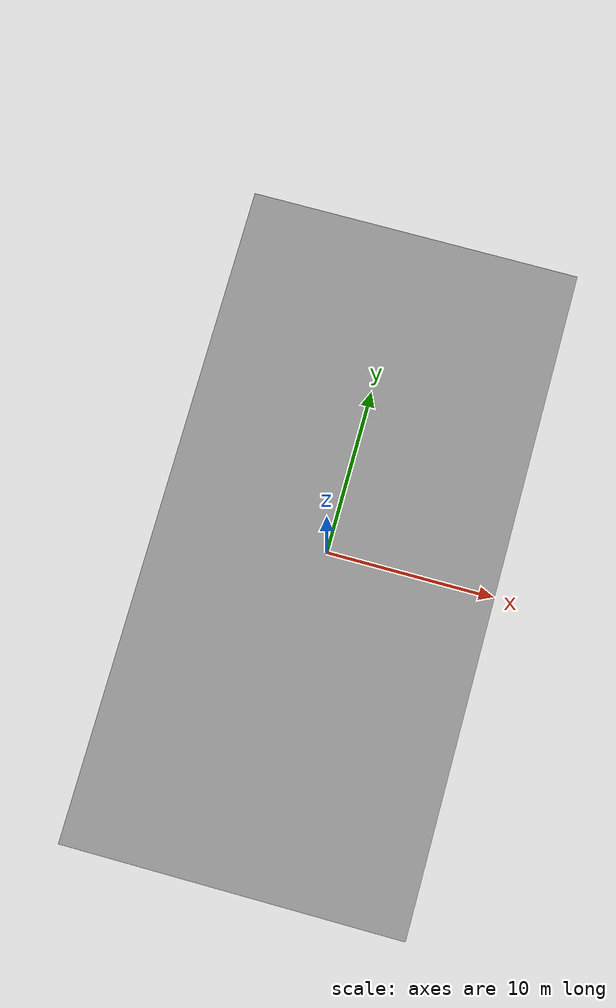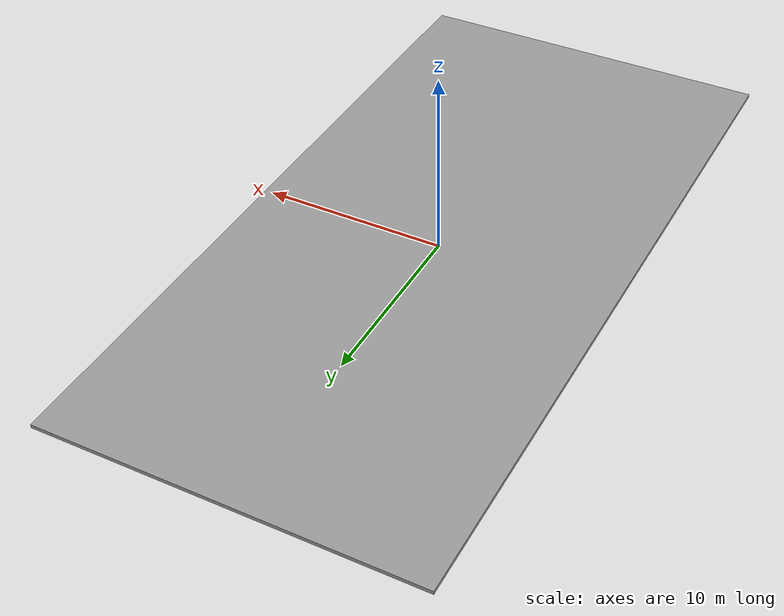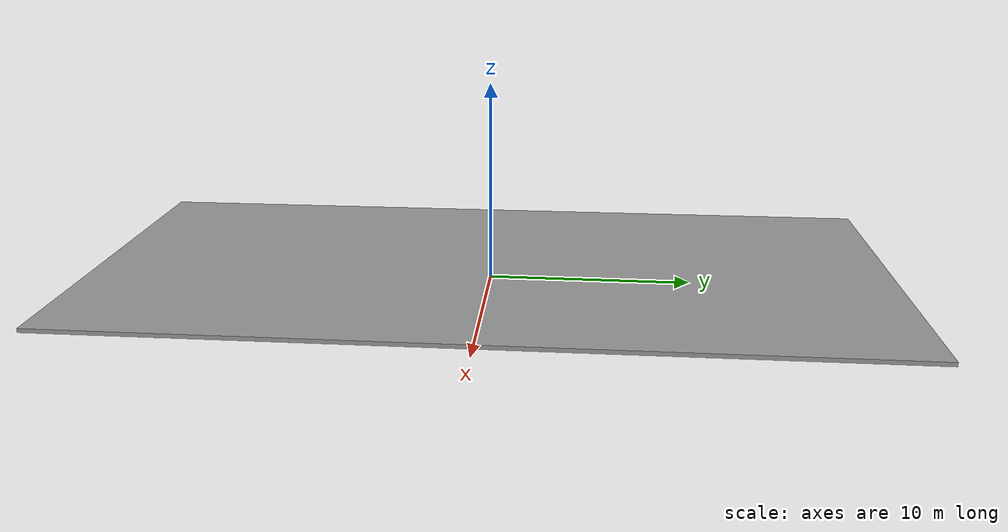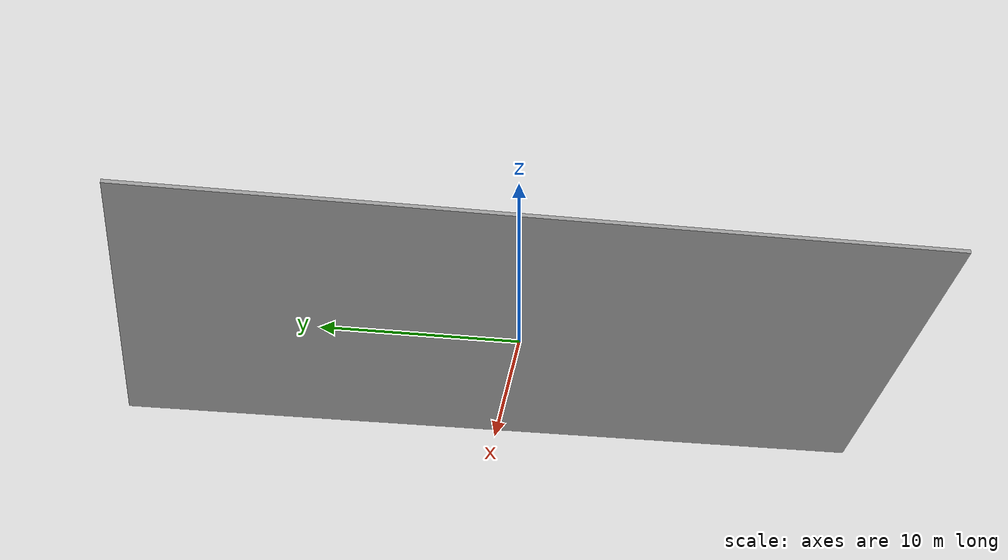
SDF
<?xml version="1.0" ?>
<sdf version="1.4">
  <model name="ceiling">
      <static>true</static>
      <pose>0 0 0.5 0 0 0</pose>
      <link name="link">
        <collision name="collision">
          <geometry>
            <box>
              <size>20 40 0.2</size>
            </box>
          </geometry>
        </collision>
        <visual name="visual">
          <geometry>
            <box>
              <size>20 40 0.2</size>
            </box>
          </geometry>
	  <material>
            <script>
              <uri>file://media/materials/scripts/gazebo.material</uri>
              <name>Gazebo/Grey</name>
            </script>
          </material>
        </visual>
      </link>
    </model>
</sdf>
